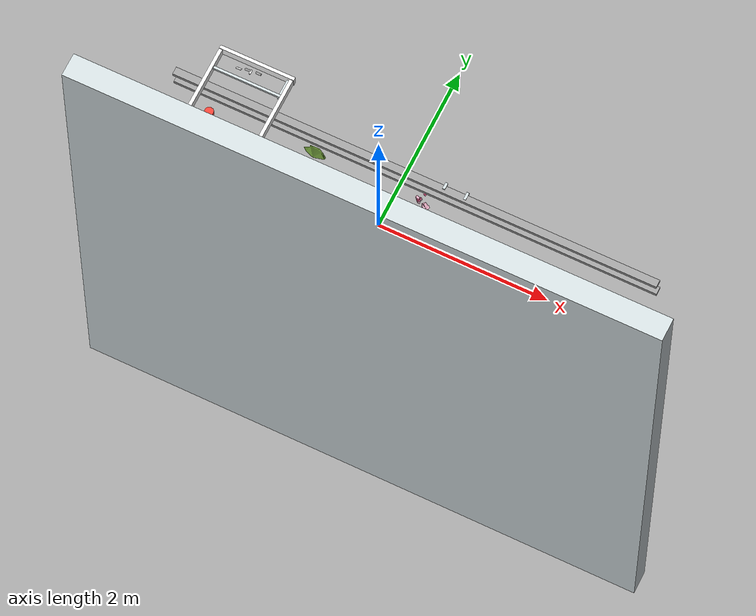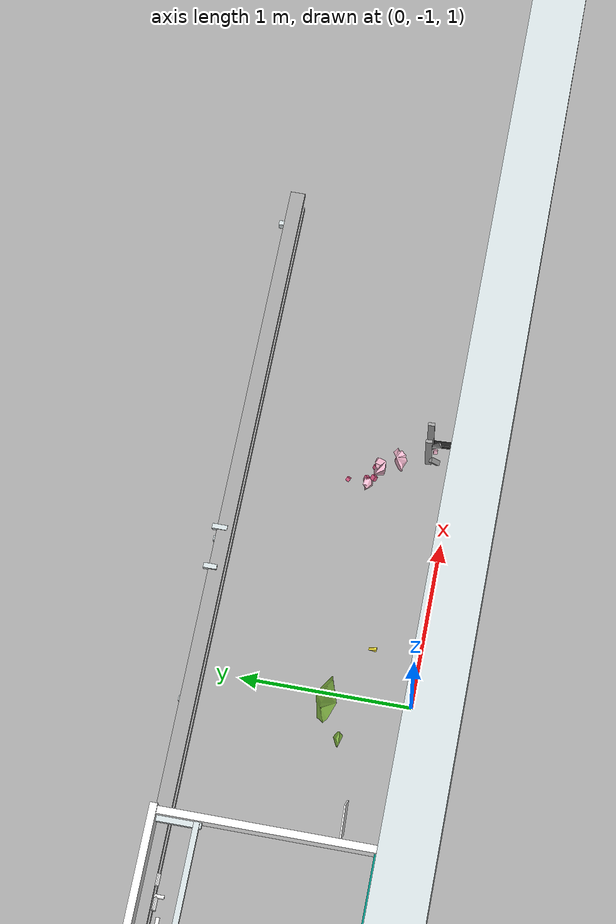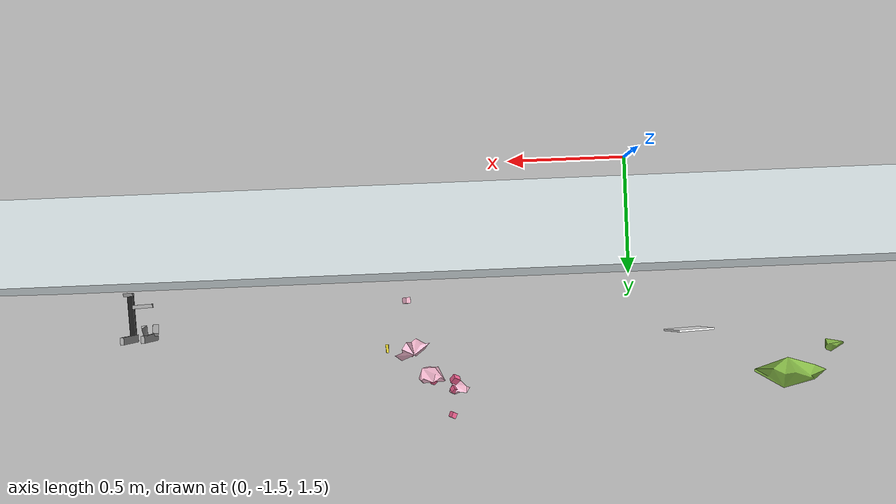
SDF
<sdf version="1.6">
 <world name="default">
  <gravity>0 0 -9.8</gravity>
  <model name="part1.obj">
   <static>1</static>
   <link name="link_d1">
    <inertial>
     <mass>0</mass>
     <inertia>
      <ixx>0.166667</ixx>
      <ixy>0</ixy>
      <ixz>0</ixz>
      <iyy>0.166667</iyy>
      <iyz>0</iyz>
      <izz>0.166667</izz>
     </inertia>
    </inertial>
    <collision name="collision_1">
     <geometry><mesh><scale>1 1 1</scale><uri>part1.obj</uri></mesh></geometry>
    </collision>
    <visual name="visual">
     <geometry><mesh><scale>1 1 1</scale><uri>part1.obj</uri></mesh></geometry>
     <material>
      <ambient>1 0 0 1</ambient>
      <diffuse>0.970000 0.730000 0.820000 1</diffuse>
      <specular>0.1 0.1 0.1 1</specular>
      <emissive>0 0 0 0</emissive>
     </material>
    </visual>
   </link>
  </model>
  <model name="part11.obj">
   <static>1</static>
   <link name="link_d11">
    <inertial>
     <mass>0</mass>
     <inertia>
      <ixx>0.166667</ixx>
      <ixy>0</ixy>
      <ixz>0</ixz>
      <iyy>0.166667</iyy>
      <iyz>0</iyz>
      <izz>0.166667</izz>
     </inertia>
    </inertial>
    <collision name="collision_11">
     <geometry><mesh><scale>1 1 1</scale><uri>part11.obj</uri></mesh></geometry>
    </collision>
    <visual name="visual">
     <geometry><mesh><scale>1 1 1</scale><uri>part11.obj</uri></mesh></geometry>
     <material>
      <ambient>1 0 0 1</ambient>
      <diffuse>0.940000 0.380000 0.570000 1</diffuse>
      <specular>0.1 0.1 0.1 1</specular>
      <emissive>0 0 0 0</emissive>
     </material>
    </visual>
   </link>
  </model>
  <model name="part14.obj">
   <static>1</static>
   <link name="link_d14">
    <inertial>
     <mass>0</mass>
     <inertia>
      <ixx>0.166667</ixx>
      <ixy>0</ixy>
      <ixz>0</ixz>
      <iyy>0.166667</iyy>
      <iyz>0</iyz>
      <izz>0.166667</izz>
     </inertia>
    </inertial>
    <collision name="collision_14">
     <geometry><mesh><scale>1 1 1</scale><uri>part14.obj</uri></mesh></geometry>
    </collision>
    <visual name="visual">
     <geometry><mesh><scale>1 1 1</scale><uri>part14.obj</uri></mesh></geometry>
     <material>
      <ambient>1 0 0 1</ambient>
      <diffuse>0.940000 0.380000 0.570000 1</diffuse>
      <specular>0.1 0.1 0.1 1</specular>
      <emissive>0 0 0 0</emissive>
     </material>
    </visual>
   </link>
  </model>
  <model name="part15.obj">
   <static>1</static>
   <link name="link_d15">
    <inertial>
     <mass>0</mass>
     <inertia>
      <ixx>0.166667</ixx>
      <ixy>0</ixy>
      <ixz>0</ixz>
      <iyy>0.166667</iyy>
      <iyz>0</iyz>
      <izz>0.166667</izz>
     </inertia>
    </inertial>
    <collision name="collision_15">
     <geometry><mesh><scale>1 1 1</scale><uri>part15.obj</uri></mesh></geometry>
    </collision>
    <visual name="visual">
     <geometry><mesh><scale>1 1 1</scale><uri>part15.obj</uri></mesh></geometry>
     <material>
      <ambient>1 0 0 1</ambient>
      <diffuse>0.940000 0.380000 0.570000 1</diffuse>
      <specular>0.1 0.1 0.1 1</specular>
      <emissive>0 0 0 0</emissive>
     </material>
    </visual>
   </link>
  </model>
  <model name="part16.obj">
   <static>1</static>
   <link name="link_d16">
    <inertial>
     <mass>0</mass>
     <inertia>
      <ixx>0.166667</ixx>
      <ixy>0</ixy>
      <ixz>0</ixz>
      <iyy>0.166667</iyy>
      <iyz>0</iyz>
      <izz>0.166667</izz>
     </inertia>
    </inertial>
    <collision name="collision_16">
     <geometry><mesh><scale>1 1 1</scale><uri>part16.obj</uri></mesh></geometry>
    </collision>
    <visual name="visual">
     <geometry><mesh><scale>1 1 1</scale><uri>part16.obj</uri></mesh></geometry>
     <material>
      <ambient>1 0 0 1</ambient>
      <diffuse>0.940000 0.380000 0.570000 1</diffuse>
      <specular>0.1 0.1 0.1 1</specular>
      <emissive>0 0 0 0</emissive>
     </material>
    </visual>
   </link>
  </model>
  <model name="part17.obj">
   <static>1</static>
   <link name="link_d17">
    <inertial>
     <mass>0</mass>
     <inertia>
      <ixx>0.166667</ixx>
      <ixy>0</ixy>
      <ixz>0</ixz>
      <iyy>0.166667</iyy>
      <iyz>0</iyz>
      <izz>0.166667</izz>
     </inertia>
    </inertial>
    <collision name="collision_17">
     <geometry><mesh><scale>1 1 1</scale><uri>part17.obj</uri></mesh></geometry>
    </collision>
    <visual name="visual">
     <geometry><mesh><scale>1 1 1</scale><uri>part17.obj</uri></mesh></geometry>
     <material>
      <ambient>1 0 0 1</ambient>
      <diffuse>0.940000 0.380000 0.570000 1</diffuse>
      <specular>0.1 0.1 0.1 1</specular>
      <emissive>0 0 0 0</emissive>
     </material>
    </visual>
   </link>
  </model>
  <model name="part101.obj">
   <static>1</static>
   <link name="link_d101">
    <inertial>
     <mass>0</mass>
     <inertia>
      <ixx>0.166667</ixx>
      <ixy>0</ixy>
      <ixz>0</ixz>
      <iyy>0.166667</iyy>
      <iyz>0</iyz>
      <izz>0.166667</izz>
     </inertia>
    </inertial>
    <collision name="collision_101">
     <geometry><mesh><scale>1 1 1</scale><uri>part101.obj</uri></mesh></geometry>
    </collision>
    <visual name="visual">
     <geometry><mesh><scale>1 1 1</scale><uri>part101.obj</uri></mesh></geometry>
     <material>
      <ambient>1 0 0 1</ambient>
      <diffuse>0.000000 0.590000 0.530000 1</diffuse>
      <specular>0.1 0.1 0.1 1</specular>
      <emissive>0 0 0 0</emissive>
     </material>
    </visual>
   </link>
  </model>
  <model name="part104.obj">
   <static>1</static>
   <link name="link_d104">
    <inertial>
     <mass>0</mass>
     <inertia>
      <ixx>0.166667</ixx>
      <ixy>0</ixy>
      <ixz>0</ixz>
      <iyy>0.166667</iyy>
      <iyz>0</iyz>
      <izz>0.166667</izz>
     </inertia>
    </inertial>
    <collision name="collision_104">
     <geometry><mesh><scale>1 1 1</scale><uri>part104.obj</uri></mesh></geometry>
    </collision>
    <visual name="visual">
     <geometry><mesh><scale>1 1 1</scale><uri>part104.obj</uri></mesh></geometry>
     <material>
      <ambient>1 0 0 1</ambient>
      <diffuse>0.970000 0.730000 0.820000 1</diffuse>
      <specular>0.1 0.1 0.1 1</specular>
      <emissive>0 0 0 0</emissive>
     </material>
    </visual>
   </link>
  </model>
  <model name="part105.obj">
   <static>1</static>
   <link name="link_d105">
    <inertial>
     <mass>0</mass>
     <inertia>
      <ixx>0.166667</ixx>
      <ixy>0</ixy>
      <ixz>0</ixz>
      <iyy>0.166667</iyy>
      <iyz>0</iyz>
      <izz>0.166667</izz>
     </inertia>
    </inertial>
    <collision name="collision_105">
     <geometry><mesh><scale>1 1 1</scale><uri>part105.obj</uri></mesh></geometry>
    </collision>
    <visual name="visual">
     <geometry><mesh><scale>1 1 1</scale><uri>part105.obj</uri></mesh></geometry>
     <material>
      <ambient>1 0 0 1</ambient>
      <diffuse>0.620000 0.620000 0.620000 1</diffuse>
      <specular>0.1 0.1 0.1 1</specular>
      <emissive>0 0 0 0</emissive>
     </material>
    </visual>
   </link>
  </model>
  <model name="part106.obj">
   <static>1</static>
   <link name="link_d106">
    <inertial>
     <mass>0</mass>
     <inertia>
      <ixx>0.166667</ixx>
      <ixy>0</ixy>
      <ixz>0</ixz>
      <iyy>0.166667</iyy>
      <iyz>0</iyz>
      <izz>0.166667</izz>
     </inertia>
    </inertial>
    <collision name="collision_106">
     <geometry><mesh><scale>1 1 1</scale><uri>part106.obj</uri></mesh></geometry>
    </collision>
    <visual name="visual">
     <geometry><mesh><scale>1 1 1</scale><uri>part106.obj</uri></mesh></geometry>
     <material>
      <ambient>1 0 0 1</ambient>
      <diffuse>0.620000 0.620000 0.620000 1</diffuse>
      <specular>0.1 0.1 0.1 1</specular>
      <emissive>0 0 0 0</emissive>
     </material>
    </visual>
   </link>
  </model>
  <model name="part108.obj">
   <static>1</static>
   <link name="link_d108">
    <inertial>
     <mass>0</mass>
     <inertia>
      <ixx>0.166667</ixx>
      <ixy>0</ixy>
      <ixz>0</ixz>
      <iyy>0.166667</iyy>
      <iyz>0</iyz>
      <izz>0.166667</izz>
     </inertia>
    </inertial>
    <collision name="collision_108">
     <geometry><mesh><scale>1 1 1</scale><uri>part108.obj</uri></mesh></geometry>
    </collision>
    <visual name="visual">
     <geometry><mesh><scale>1 1 1</scale><uri>part108.obj</uri></mesh></geometry>
     <material>
      <ambient>1 0 0 1</ambient>
      <diffuse>0.970000 0.730000 0.820000 1</diffuse>
      <specular>0.1 0.1 0.1 1</specular>
      <emissive>0 0 0 0</emissive>
     </material>
    </visual>
   </link>
  </model>
  <model name="part109.obj">
   <static>1</static>
   <link name="link_d109">
    <inertial>
     <mass>0</mass>
     <inertia>
      <ixx>0.166667</ixx>
      <ixy>0</ixy>
      <ixz>0</ixz>
      <iyy>0.166667</iyy>
      <iyz>0</iyz>
      <izz>0.166667</izz>
     </inertia>
    </inertial>
    <collision name="collision_109">
     <geometry><mesh><scale>1 1 1</scale><uri>part109.obj</uri></mesh></geometry>
    </collision>
    <visual name="visual">
     <geometry><mesh><scale>1 1 1</scale><uri>part109.obj</uri></mesh></geometry>
     <material>
      <ambient>1 0 0 1</ambient>
      <diffuse>0.970000 0.730000 0.820000 1</diffuse>
      <specular>0.1 0.1 0.1 1</specular>
      <emissive>0 0 0 0</emissive>
     </material>
    </visual>
   </link>
  </model>
  <model name="part110.obj">
   <static>1</static>
   <link name="link_d110">
    <inertial>
     <mass>0</mass>
     <inertia>
      <ixx>0.166667</ixx>
      <ixy>0</ixy>
      <ixz>0</ixz>
      <iyy>0.166667</iyy>
      <iyz>0</iyz>
      <izz>0.166667</izz>
     </inertia>
    </inertial>
    <collision name="collision_110">
     <geometry><mesh><scale>1 1 1</scale><uri>part110.obj</uri></mesh></geometry>
    </collision>
    <visual name="visual">
     <geometry><mesh><scale>1 1 1</scale><uri>part110.obj</uri></mesh></geometry>
     <material>
      <ambient>1 0 0 1</ambient>
      <diffuse>0.550000 0.760000 0.290000 1</diffuse>
      <specular>0.1 0.1 0.1 1</specular>
      <emissive>0 0 0 0</emissive>
     </material>
    </visual>
   </link>
  </model>
  <model name="part112.obj">
   <static>1</static>
   <link name="link_d112">
    <inertial>
     <mass>0</mass>
     <inertia>
      <ixx>0.166667</ixx>
      <ixy>0</ixy>
      <ixz>0</ixz>
      <iyy>0.166667</iyy>
      <iyz>0</iyz>
      <izz>0.166667</izz>
     </inertia>
    </inertial>
    <collision name="collision_112">
     <geometry><mesh><scale>1 1 1</scale><uri>part112.obj</uri></mesh></geometry>
    </collision>
    <visual name="visual">
     <geometry><mesh><scale>1 1 1</scale><uri>part112.obj</uri></mesh></geometry>
     <material>
      <ambient>1 0 0 1</ambient>
      <diffuse>0.550000 0.760000 0.290000 1</diffuse>
      <specular>0.1 0.1 0.1 1</specular>
      <emissive>0 0 0 0</emissive>
     </material>
    </visual>
   </link>
  </model>
  <model name="part113.obj">
   <static>1</static>
   <link name="link_d113">
    <inertial>
     <mass>0</mass>
     <inertia>
      <ixx>0.166667</ixx>
      <ixy>0</ixy>
      <ixz>0</ixz>
      <iyy>0.166667</iyy>
      <iyz>0</iyz>
      <izz>0.166667</izz>
     </inertia>
    </inertial>
    <collision name="collision_113">
     <geometry><mesh><scale>1 1 1</scale><uri>part113.obj</uri></mesh></geometry>
    </collision>
    <visual name="visual">
     <geometry><mesh><scale>1 1 1</scale><uri>part113.obj</uri></mesh></geometry>
     <material>
      <ambient>1 0 0 1</ambient>
      <diffuse>1.000000 1.000000 1.000000 1</diffuse>
      <specular>0.1 0.1 0.1 1</specular>
      <emissive>0 0 0 0</emissive>
     </material>
    </visual>
   </link>
  </model>
  <model name="part114.obj">
   <static>1</static>
   <link name="link_d114">
    <inertial>
     <mass>0</mass>
     <inertia>
      <ixx>0.166667</ixx>
      <ixy>0</ixy>
      <ixz>0</ixz>
      <iyy>0.166667</iyy>
      <iyz>0</iyz>
      <izz>0.166667</izz>
     </inertia>
    </inertial>
    <collision name="collision_114">
     <geometry><mesh><scale>1 1 1</scale><uri>part114.obj</uri></mesh></geometry>
    </collision>
    <visual name="visual">
     <geometry><mesh><scale>1 1 1</scale><uri>part114.obj</uri></mesh></geometry>
     <material>
      <ambient>1 0 0 1</ambient>
      <diffuse>0.810000 0.850000 0.860000 1</diffuse>
      <specular>0.1 0.1 0.1 1</specular>
      <emissive>0 0 0 0</emissive>
     </material>
    </visual>
   </link>
  </model>
  <model name="part117.obj">
   <static>1</static>
   <link name="link_d117">
    <inertial>
     <mass>0</mass>
     <inertia>
      <ixx>0.166667</ixx>
      <ixy>0</ixy>
      <ixz>0</ixz>
      <iyy>0.166667</iyy>
      <iyz>0</iyz>
      <izz>0.166667</izz>
     </inertia>
    </inertial>
    <collision name="collision_117">
     <geometry><mesh><scale>1 1 1</scale><uri>part117.obj</uri></mesh></geometry>
    </collision>
    <visual name="visual">
     <geometry><mesh><scale>1 1 1</scale><uri>part117.obj</uri></mesh></geometry>
     <material>
      <ambient>1 0 0 1</ambient>
      <diffuse>0.810000 0.850000 0.860000 1</diffuse>
      <specular>0.1 0.1 0.1 1</specular>
      <emissive>0 0 0 0</emissive>
     </material>
    </visual>
   </link>
  </model>
  <model name="part119.obj">
   <static>1</static>
   <link name="link_d119">
    <inertial>
     <mass>0</mass>
     <inertia>
      <ixx>0.166667</ixx>
      <ixy>0</ixy>
      <ixz>0</ixz>
      <iyy>0.166667</iyy>
      <iyz>0</iyz>
      <izz>0.166667</izz>
     </inertia>
    </inertial>
    <collision name="collision_119">
     <geometry><mesh><scale>1 1 1</scale><uri>part119.obj</uri></mesh></geometry>
    </collision>
    <visual name="visual">
     <geometry><mesh><scale>1 1 1</scale><uri>part119.obj</uri></mesh></geometry>
     <material>
      <ambient>1 0 0 1</ambient>
      <diffuse>0.620000 0.620000 0.620000 1</diffuse>
      <specular>0.1 0.1 0.1 1</specular>
      <emissive>0 0 0 0</emissive>
     </material>
    </visual>
   </link>
  </model>
  <model name="part120.obj">
   <static>1</static>
   <link name="link_d120">
    <inertial>
     <mass>0</mass>
     <inertia>
      <ixx>0.166667</ixx>
      <ixy>0</ixy>
      <ixz>0</ixz>
      <iyy>0.166667</iyy>
      <iyz>0</iyz>
      <izz>0.166667</izz>
     </inertia>
    </inertial>
    <collision name="collision_120">
     <geometry><mesh><scale>1 1 1</scale><uri>part120.obj</uri></mesh></geometry>
    </collision>
    <visual name="visual">
     <geometry><mesh><scale>1 1 1</scale><uri>part120.obj</uri></mesh></geometry>
     <material>
      <ambient>1 0 0 1</ambient>
      <diffuse>0.620000 0.620000 0.620000 1</diffuse>
      <specular>0.1 0.1 0.1 1</specular>
      <emissive>0 0 0 0</emissive>
     </material>
    </visual>
   </link>
  </model>
  <model name="part126.obj">
   <static>1</static>
   <link name="link_d126">
    <inertial>
     <mass>0</mass>
     <inertia>
      <ixx>0.166667</ixx>
      <ixy>0</ixy>
      <ixz>0</ixz>
      <iyy>0.166667</iyy>
      <iyz>0</iyz>
      <izz>0.166667</izz>
     </inertia>
    </inertial>
    <collision name="collision_126">
     <geometry><mesh><scale>1 1 1</scale><uri>part126.obj</uri></mesh></geometry>
    </collision>
    <visual name="visual">
     <geometry><mesh><scale>1 1 1</scale><uri>part126.obj</uri></mesh></geometry>
     <material>
      <ambient>1 0 0 1</ambient>
      <diffuse>0.620000 0.620000 0.620000 1</diffuse>
      <specular>0.1 0.1 0.1 1</specular>
      <emissive>0 0 0 0</emissive>
     </material>
    </visual>
   </link>
  </model>
  <model name="part127.obj">
   <static>1</static>
   <link name="link_d127">
    <inertial>
     <mass>0</mass>
     <inertia>
      <ixx>0.166667</ixx>
      <ixy>0</ixy>
      <ixz>0</ixz>
      <iyy>0.166667</iyy>
      <iyz>0</iyz>
      <izz>0.166667</izz>
     </inertia>
    </inertial>
    <collision name="collision_127">
     <geometry><mesh><scale>1 1 1</scale><uri>part127.obj</uri></mesh></geometry>
    </collision>
    <visual name="visual">
     <geometry><mesh><scale>1 1 1</scale><uri>part127.obj</uri></mesh></geometry>
     <material>
      <ambient>1 0 0 1</ambient>
      <diffuse>0.100000 0.100000 0.100000 1</diffuse>
      <specular>0.1 0.1 0.1 1</specular>
      <emissive>0 0 0 0</emissive>
     </material>
    </visual>
   </link>
  </model>
  <model name="part128.obj">
   <static>1</static>
   <link name="link_d128">
    <inertial>
     <mass>0</mass>
     <inertia>
      <ixx>0.166667</ixx>
      <ixy>0</ixy>
      <ixz>0</ixz>
      <iyy>0.166667</iyy>
      <iyz>0</iyz>
      <izz>0.166667</izz>
     </inertia>
    </inertial>
    <collision name="collision_128">
     <geometry><mesh><scale>1 1 1</scale><uri>part128.obj</uri></mesh></geometry>
    </collision>
    <visual name="visual">
     <geometry><mesh><scale>1 1 1</scale><uri>part128.obj</uri></mesh></geometry>
     <material>
      <ambient>1 0 0 1</ambient>
      <diffuse>0.620000 0.620000 0.620000 1</diffuse>
      <specular>0.1 0.1 0.1 1</specular>
      <emissive>0 0 0 0</emissive>
     </material>
    </visual>
   </link>
  </model>
  <model name="part130.obj">
   <static>1</static>
   <link name="link_d130">
    <inertial>
     <mass>0</mass>
     <inertia>
      <ixx>0.166667</ixx>
      <ixy>0</ixy>
      <ixz>0</ixz>
      <iyy>0.166667</iyy>
      <iyz>0</iyz>
      <izz>0.166667</izz>
     </inertia>
    </inertial>
    <collision name="collision_130">
     <geometry><mesh><scale>1 1 1</scale><uri>part130.obj</uri></mesh></geometry>
    </collision>
    <visual name="visual">
     <geometry><mesh><scale>1 1 1</scale><uri>part130.obj</uri></mesh></geometry>
     <material>
      <ambient>1 0 0 1</ambient>
      <diffuse>0.620000 0.620000 0.620000 1</diffuse>
      <specular>0.1 0.1 0.1 1</specular>
      <emissive>0 0 0 0</emissive>
     </material>
    </visual>
   </link>
  </model>
  <model name="part131.obj">
   <static>1</static>
   <link name="link_d131">
    <inertial>
     <mass>0</mass>
     <inertia>
      <ixx>0.166667</ixx>
      <ixy>0</ixy>
      <ixz>0</ixz>
      <iyy>0.166667</iyy>
      <iyz>0</iyz>
      <izz>0.166667</izz>
     </inertia>
    </inertial>
    <collision name="collision_131">
     <geometry><mesh><scale>1 1 1</scale><uri>part131.obj</uri></mesh></geometry>
    </collision>
    <visual name="visual">
     <geometry><mesh><scale>1 1 1</scale><uri>part131.obj</uri></mesh></geometry>
     <material>
      <ambient>1 0 0 1</ambient>
      <diffuse>0.620000 0.620000 0.620000 1</diffuse>
      <specular>0.1 0.1 0.1 1</specular>
      <emissive>0 0 0 0</emissive>
     </material>
    </visual>
   </link>
  </model>
  <model name="part136.obj">
   <static>1</static>
   <link name="link_d136">
    <inertial>
     <mass>0</mass>
     <inertia>
      <ixx>0.166667</ixx>
      <ixy>0</ixy>
      <ixz>0</ixz>
      <iyy>0.166667</iyy>
      <iyz>0</iyz>
      <izz>0.166667</izz>
     </inertia>
    </inertial>
    <collision name="collision_136">
     <geometry><mesh><scale>1 1 1</scale><uri>part136.obj</uri></mesh></geometry>
    </collision>
    <visual name="visual">
     <geometry><mesh><scale>1 1 1</scale><uri>part136.obj</uri></mesh></geometry>
     <material>
      <ambient>1 0 0 1</ambient>
      <diffuse>0.810000 0.850000 0.860000 1</diffuse>
      <specular>0.1 0.1 0.1 1</specular>
      <emissive>0 0 0 0</emissive>
     </material>
    </visual>
   </link>
  </model>
  <model name="part137.obj">
   <static>1</static>
   <link name="link_d137">
    <inertial>
     <mass>0</mass>
     <inertia>
      <ixx>0.166667</ixx>
      <ixy>0</ixy>
      <ixz>0</ixz>
      <iyy>0.166667</iyy>
      <iyz>0</iyz>
      <izz>0.166667</izz>
     </inertia>
    </inertial>
    <collision name="collision_137">
     <geometry><mesh><scale>1 1 1</scale><uri>part137.obj</uri></mesh></geometry>
    </collision>
    <visual name="visual">
     <geometry><mesh><scale>1 1 1</scale><uri>part137.obj</uri></mesh></geometry>
     <material>
      <ambient>1 0 0 1</ambient>
      <diffuse>0.810000 0.850000 0.860000 1</diffuse>
      <specular>0.1 0.1 0.1 1</specular>
      <emissive>0 0 0 0</emissive>
     </material>
    </visual>
   </link>
  </model>
  <model name="part138.obj">
   <static>1</static>
   <link name="link_d138">
    <inertial>
     <mass>0</mass>
     <inertia>
      <ixx>0.166667</ixx>
      <ixy>0</ixy>
      <ixz>0</ixz>
      <iyy>0.166667</iyy>
      <iyz>0</iyz>
      <izz>0.166667</izz>
     </inertia>
    </inertial>
    <collision name="collision_138">
     <geometry><mesh><scale>1 1 1</scale><uri>part138.obj</uri></mesh></geometry>
    </collision>
    <visual name="visual">
     <geometry><mesh><scale>1 1 1</scale><uri>part138.obj</uri></mesh></geometry>
     <material>
      <ambient>1 0 0 1</ambient>
      <diffuse>0.810000 0.850000 0.860000 1</diffuse>
      <specular>0.1 0.1 0.1 1</specular>
      <emissive>0 0 0 0</emissive>
     </material>
    </visual>
   </link>
  </model>
  <model name="part140.obj">
   <static>1</static>
   <link name="link_d140">
    <inertial>
     <mass>0</mass>
     <inertia>
      <ixx>0.166667</ixx>
      <ixy>0</ixy>
      <ixz>0</ixz>
      <iyy>0.166667</iyy>
      <iyz>0</iyz>
      <izz>0.166667</izz>
     </inertia>
    </inertial>
    <collision name="collision_140">
     <geometry><mesh><scale>1 1 1</scale><uri>part140.obj</uri></mesh></geometry>
    </collision>
    <visual name="visual">
     <geometry><mesh><scale>1 1 1</scale><uri>part140.obj</uri></mesh></geometry>
     <material>
      <ambient>1 0 0 1</ambient>
      <diffuse>0.810000 0.850000 0.860000 1</diffuse>
      <specular>0.1 0.1 0.1 1</specular>
      <emissive>0 0 0 0</emissive>
     </material>
    </visual>
   </link>
  </model>
  <model name="part142.obj">
   <static>1</static>
   <link name="link_d142">
    <inertial>
     <mass>0</mass>
     <inertia>
      <ixx>0.166667</ixx>
      <ixy>0</ixy>
      <ixz>0</ixz>
      <iyy>0.166667</iyy>
      <iyz>0</iyz>
      <izz>0.166667</izz>
     </inertia>
    </inertial>
    <collision name="collision_142">
     <geometry><mesh><scale>1 1 1</scale><uri>part142.obj</uri></mesh></geometry>
    </collision>
    <visual name="visual">
     <geometry><mesh><scale>1 1 1</scale><uri>part142.obj</uri></mesh></geometry>
     <material>
      <ambient>1 0 0 1</ambient>
      <diffuse>0.810000 0.850000 0.860000 1</diffuse>
      <specular>0.1 0.1 0.1 1</specular>
      <emissive>0 0 0 0</emissive>
     </material>
    </visual>
   </link>
  </model>
  <model name="part144.obj">
   <static>1</static>
   <link name="link_d144">
    <inertial>
     <mass>0</mass>
     <inertia>
      <ixx>0.166667</ixx>
      <ixy>0</ixy>
      <ixz>0</ixz>
      <iyy>0.166667</iyy>
      <iyz>0</iyz>
      <izz>0.166667</izz>
     </inertia>
    </inertial>
    <collision name="collision_144">
     <geometry><mesh><scale>1 1 1</scale><uri>part144.obj</uri></mesh></geometry>
    </collision>
    <visual name="visual">
     <geometry><mesh><scale>1 1 1</scale><uri>part144.obj</uri></mesh></geometry>
     <material>
      <ambient>1 0 0 1</ambient>
      <diffuse>1.000000 1.000000 1.000000 1</diffuse>
      <specular>0.1 0.1 0.1 1</specular>
      <emissive>0 0 0 0</emissive>
     </material>
    </visual>
   </link>
  </model>
  <model name="part145.obj">
   <static>1</static>
   <link name="link_d145">
    <inertial>
     <mass>0</mass>
     <inertia>
      <ixx>0.166667</ixx>
      <ixy>0</ixy>
      <ixz>0</ixz>
      <iyy>0.166667</iyy>
      <iyz>0</iyz>
      <izz>0.166667</izz>
     </inertia>
    </inertial>
    <collision name="collision_145">
     <geometry><mesh><scale>1 1 1</scale><uri>part145.obj</uri></mesh></geometry>
    </collision>
    <visual name="visual">
     <geometry><mesh><scale>1 1 1</scale><uri>part145.obj</uri></mesh></geometry>
     <material>
      <ambient>1 0 0 1</ambient>
      <diffuse>1.000000 1.000000 1.000000 1</diffuse>
      <specular>0.1 0.1 0.1 1</specular>
      <emissive>0 0 0 0</emissive>
     </material>
    </visual>
   </link>
  </model>
  <model name="part152.obj">
   <static>1</static>
   <link name="link_d152">
    <inertial>
     <mass>0</mass>
     <inertia>
      <ixx>0.166667</ixx>
      <ixy>0</ixy>
      <ixz>0</ixz>
      <iyy>0.166667</iyy>
      <iyz>0</iyz>
      <izz>0.166667</izz>
     </inertia>
    </inertial>
    <collision name="collision_152">
     <geometry><mesh><scale>1 1 1</scale><uri>part152.obj</uri></mesh></geometry>
    </collision>
    <visual name="visual">
     <geometry><mesh><scale>1 1 1</scale><uri>part152.obj</uri></mesh></geometry>
     <material>
      <ambient>1 0 0 1</ambient>
      <diffuse>1.000000 1.000000 1.000000 1</diffuse>
      <specular>0.1 0.1 0.1 1</specular>
      <emissive>0 0 0 0</emissive>
     </material>
    </visual>
   </link>
  </model>
  <model name="part155.obj">
   <static>1</static>
   <link name="link_d155">
    <inertial>
     <mass>0</mass>
     <inertia>
      <ixx>0.166667</ixx>
      <ixy>0</ixy>
      <ixz>0</ixz>
      <iyy>0.166667</iyy>
      <iyz>0</iyz>
      <izz>0.166667</izz>
     </inertia>
    </inertial>
    <collision name="collision_155">
     <geometry><mesh><scale>1 1 1</scale><uri>part155.obj</uri></mesh></geometry>
    </collision>
    <visual name="visual">
     <geometry><mesh><scale>1 1 1</scale><uri>part155.obj</uri></mesh></geometry>
     <material>
      <ambient>1 0 0 1</ambient>
      <diffuse>0.810000 0.850000 0.860000 1</diffuse>
      <specular>0.1 0.1 0.1 1</specular>
      <emissive>0 0 0 0</emissive>
     </material>
    </visual>
   </link>
  </model>
  <model name="part157.obj">
   <static>1</static>
   <link name="link_d157">
    <inertial>
     <mass>0</mass>
     <inertia>
      <ixx>0.166667</ixx>
      <ixy>0</ixy>
      <ixz>0</ixz>
      <iyy>0.166667</iyy>
      <iyz>0</iyz>
      <izz>0.166667</izz>
     </inertia>
    </inertial>
    <collision name="collision_157">
     <geometry><mesh><scale>1 1 1</scale><uri>part157.obj</uri></mesh></geometry>
    </collision>
    <visual name="visual">
     <geometry><mesh><scale>1 1 1</scale><uri>part157.obj</uri></mesh></geometry>
     <material>
      <ambient>1 0 0 1</ambient>
      <diffuse>0.810000 0.850000 0.860000 1</diffuse>
      <specular>0.1 0.1 0.1 1</specular>
      <emissive>0 0 0 0</emissive>
     </material>
    </visual>
   </link>
  </model>
  <model name="part158.obj">
   <static>1</static>
   <link name="link_d158">
    <inertial>
     <mass>0</mass>
     <inertia>
      <ixx>0.166667</ixx>
      <ixy>0</ixy>
      <ixz>0</ixz>
      <iyy>0.166667</iyy>
      <iyz>0</iyz>
      <izz>0.166667</izz>
     </inertia>
    </inertial>
    <collision name="collision_158">
     <geometry><mesh><scale>1 1 1</scale><uri>part158.obj</uri></mesh></geometry>
    </collision>
    <visual name="visual">
     <geometry><mesh><scale>1 1 1</scale><uri>part158.obj</uri></mesh></geometry>
     <material>
      <ambient>1 0 0 1</ambient>
      <diffuse>0.960000 0.260000 0.210000 1</diffuse>
      <specular>0.1 0.1 0.1 1</specular>
      <emissive>0 0 0 0</emissive>
     </material>
    </visual>
   </link>
  </model>
  <model name="part160.obj">
   <static>1</static>
   <link name="link_d160">
    <inertial>
     <mass>0</mass>
     <inertia>
      <ixx>0.166667</ixx>
      <ixy>0</ixy>
      <ixz>0</ixz>
      <iyy>0.166667</iyy>
      <iyz>0</iyz>
      <izz>0.166667</izz>
     </inertia>
    </inertial>
    <collision name="collision_160">
     <geometry><mesh><scale>1 1 1</scale><uri>part160.obj</uri></mesh></geometry>
    </collision>
    <visual name="visual">
     <geometry><mesh><scale>1 1 1</scale><uri>part160.obj</uri></mesh></geometry>
     <material>
      <ambient>1 0 0 1</ambient>
      <diffuse>1.000000 1.000000 1.000000 1</diffuse>
      <specular>0.1 0.1 0.1 1</specular>
      <emissive>0 0 0 0</emissive>
     </material>
    </visual>
   </link>
  </model>
  <model name="part162.obj">
   <static>1</static>
   <link name="link_d162">
    <inertial>
     <mass>0</mass>
     <inertia>
      <ixx>0.166667</ixx>
      <ixy>0</ixy>
      <ixz>0</ixz>
      <iyy>0.166667</iyy>
      <iyz>0</iyz>
      <izz>0.166667</izz>
     </inertia>
    </inertial>
    <collision name="collision_162">
     <geometry><mesh><scale>1 1 1</scale><uri>part162.obj</uri></mesh></geometry>
    </collision>
    <visual name="visual">
     <geometry><mesh><scale>1 1 1</scale><uri>part162.obj</uri></mesh></geometry>
     <material>
      <ambient>1 0 0 1</ambient>
      <diffuse>1.000000 1.000000 1.000000 1</diffuse>
      <specular>0.1 0.1 0.1 1</specular>
      <emissive>0 0 0 0</emissive>
     </material>
    </visual>
   </link>
  </model>
  <model name="part163.obj">
   <static>1</static>
   <link name="link_d163">
    <inertial>
     <mass>0</mass>
     <inertia>
      <ixx>0.166667</ixx>
      <ixy>0</ixy>
      <ixz>0</ixz>
      <iyy>0.166667</iyy>
      <iyz>0</iyz>
      <izz>0.166667</izz>
     </inertia>
    </inertial>
    <collision name="collision_163">
     <geometry><mesh><scale>1 1 1</scale><uri>part163.obj</uri></mesh></geometry>
    </collision>
    <visual name="visual">
     <geometry><mesh><scale>1 1 1</scale><uri>part163.obj</uri></mesh></geometry>
     <material>
      <ambient>1 0 0 1</ambient>
      <diffuse>1.000000 1.000000 1.000000 1</diffuse>
      <specular>0.1 0.1 0.1 1</specular>
      <emissive>0 0 0 0</emissive>
     </material>
    </visual>
   </link>
  </model>
  <model name="part166.obj">
   <static>1</static>
   <link name="link_d166">
    <inertial>
     <mass>0</mass>
     <inertia>
      <ixx>0.166667</ixx>
      <ixy>0</ixy>
      <ixz>0</ixz>
      <iyy>0.166667</iyy>
      <iyz>0</iyz>
      <izz>0.166667</izz>
     </inertia>
    </inertial>
    <collision name="collision_166">
     <geometry><mesh><scale>1 1 1</scale><uri>part166.obj</uri></mesh></geometry>
    </collision>
    <visual name="visual">
     <geometry><mesh><scale>1 1 1</scale><uri>part166.obj</uri></mesh></geometry>
     <material>
      <ambient>1 0 0 1</ambient>
      <diffuse>1.000000 1.000000 1.000000 1</diffuse>
      <specular>0.1 0.1 0.1 1</specular>
      <emissive>0 0 0 0</emissive>
     </material>
    </visual>
   </link>
  </model>
  <model name="part169.obj">
   <static>1</static>
   <link name="link_d169">
    <inertial>
     <mass>0</mass>
     <inertia>
      <ixx>0.166667</ixx>
      <ixy>0</ixy>
      <ixz>0</ixz>
      <iyy>0.166667</iyy>
      <iyz>0</iyz>
      <izz>0.166667</izz>
     </inertia>
    </inertial>
    <collision name="collision_169">
     <geometry><mesh><scale>1 1 1</scale><uri>part169.obj</uri></mesh></geometry>
    </collision>
    <visual name="visual">
     <geometry><mesh><scale>1 1 1</scale><uri>part169.obj</uri></mesh></geometry>
     <material>
      <ambient>1 0 0 1</ambient>
      <diffuse>1.000000 0.920000 0.230000 1</diffuse>
      <specular>0.1 0.1 0.1 1</specular>
      <emissive>0 0 0 0</emissive>
     </material>
    </visual>
   </link>
  </model>
 </world>
</sdf>
